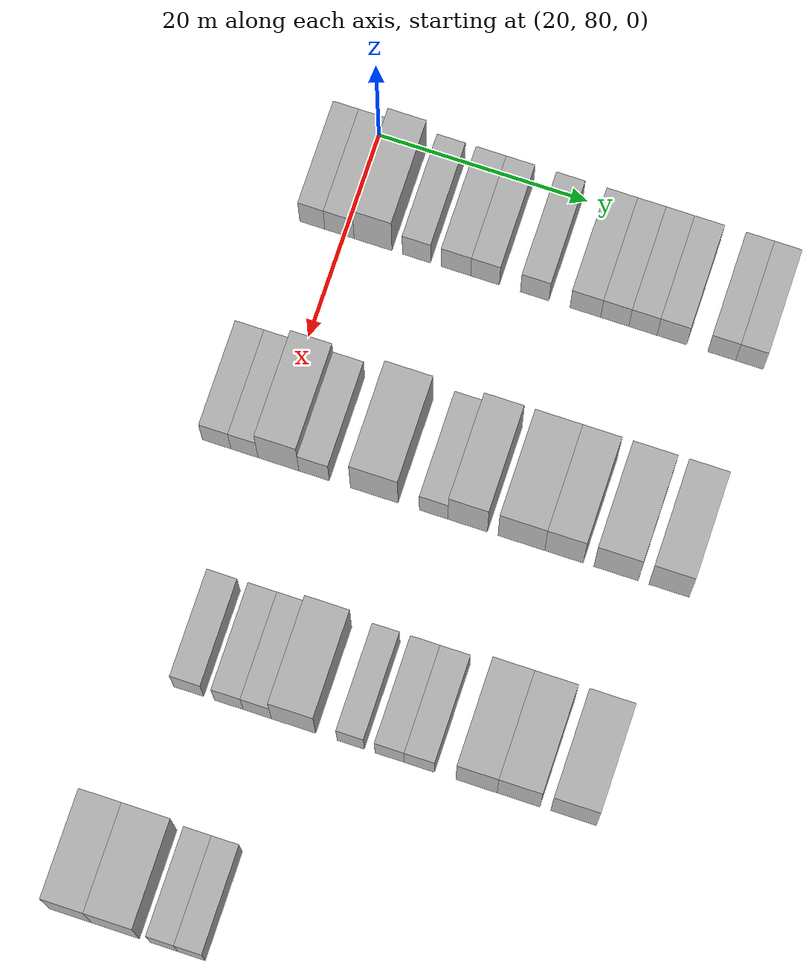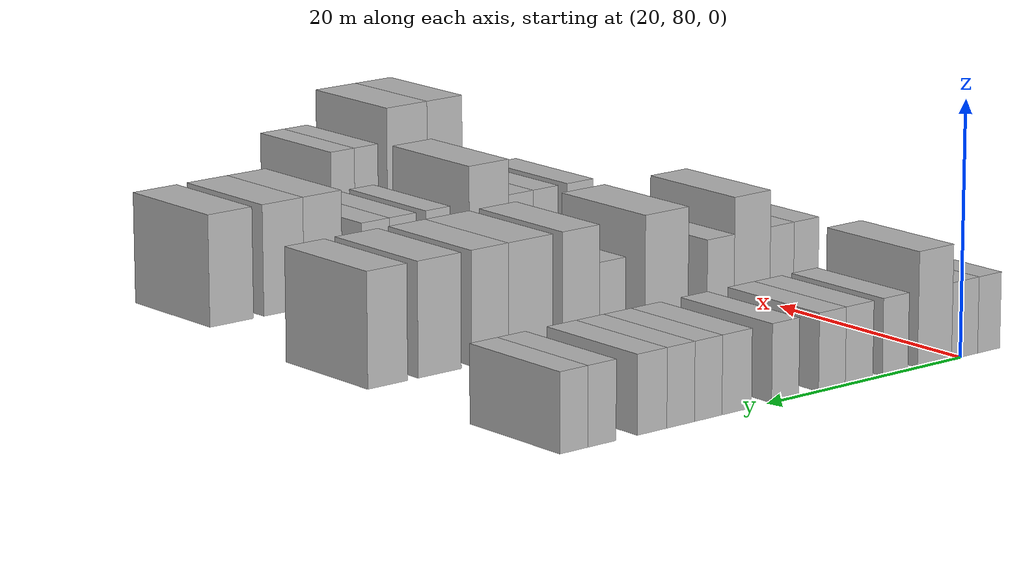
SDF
<sdf version="1.6">
 <world name="default">
  <model name="building_107">
   <static>1</static>
   <pose>25.0000 76.9660 0 0.000000 0.000000 0.000000</pose>
   <link name="link">
    <pose>0 0 3.00 0 0 0</pose>
    <collision name="collision"><geometry><box><size>10.0000 2.4051 6.0000</size></box></geometry></collision>
    <visual name="visual">
     <cast_shadows>0</cast_shadows>
     <geometry><box><size>10.0000 2.4051 6.0000</size></box></geometry>
     <material>
      <script>
       <uri>model://HANNAS_wall/materials/scripts</uri>
       <uri>model://HANNAS_wall/materials/textures</uri>
       <name>vrc/HANNAS_wall</name>
      </script>
     </material>
    </visual>
   </link>
  </model>
  <model name="building_108">
   <static>1</static>
   <pose>25.0000 79.5678 0 0.000000 0.000000 0.000000</pose>
   <link name="link">
    <pose>0 0 3.00 0 0 0</pose>
    <collision name="collision"><geometry><box><size>10.0000 2.7986 6.0000</size></box></geometry></collision>
    <visual name="visual">
     <cast_shadows>0</cast_shadows>
     <geometry><box><size>10.0000 2.7986 6.0000</size></box></geometry>
     <material>
      <script>
       <uri>model://HANNAS_wall/materials/scripts</uri>
       <uri>model://HANNAS_wall/materials/textures</uri>
       <name>vrc/HANNAS_wall</name>
      </script>
     </material>
    </visual>
   </link>
  </model>
  <model name="building_109">
   <static>1</static>
   <pose>25.0000 82.7773 0 0.000000 0.000000 0.000000</pose>
   <link name="link">
    <pose>0 0 4.50 0 0 0</pose>
    <collision name="collision"><geometry><box><size>10.0000 3.6204 9.0000</size></box></geometry></collision>
    <visual name="visual">
     <cast_shadows>0</cast_shadows>
     <geometry><box><size>10.0000 3.6204 9.0000</size></box></geometry>
     <material>
      <script>
       <uri>model://HANNAS_wall/materials/scripts</uri>
       <uri>model://HANNAS_wall/materials/textures</uri>
       <name>vrc/HANNAS_wall</name>
      </script>
     </material>
    </visual>
   </link>
  </model>
  <model name="building_110">
   <static>1</static>
   <pose>25.0000 86.9263 0 0.000000 0.000000 0.000000</pose>
   <link name="link">
    <pose>0 0 3.00 0 0 0</pose>
    <collision name="collision"><geometry><box><size>10.0000 2.6775 6.0000</size></box></geometry></collision>
    <visual name="visual">
     <cast_shadows>0</cast_shadows>
     <geometry><box><size>10.0000 2.6775 6.0000</size></box></geometry>
     <material>
      <script>
       <uri>model://HANNAS_wall/materials/scripts</uri>
       <uri>model://HANNAS_wall/materials/textures</uri>
       <name>vrc/HANNAS_wall</name>
      </script>
     </material>
    </visual>
   </link>
  </model>
  <model name="building_111">
   <static>1</static>
   <pose>25.0000 90.6845 0 0.000000 0.000000 0.000000</pose>
   <link name="link">
    <pose>0 0 3.00 0 0 0</pose>
    <collision name="collision"><geometry><box><size>10.0000 2.8389 6.0000</size></box></geometry></collision>
    <visual name="visual">
     <cast_shadows>0</cast_shadows>
     <geometry><box><size>10.0000 2.8389 6.0000</size></box></geometry>
     <material>
      <script>
       <uri>model://HANNAS_wall/materials/scripts</uri>
       <uri>model://HANNAS_wall/materials/textures</uri>
       <name>vrc/HANNAS_wall</name>
      </script>
     </material>
    </visual>
   </link>
  </model>
  <model name="building_112">
   <static>1</static>
   <pose>25.0000 93.4690 0 0.000000 0.000000 0.000000</pose>
   <link name="link">
    <pose>0 0 3.00 0 0 0</pose>
    <collision name="collision"><geometry><box><size>10.0000 2.7301 6.0000</size></box></geometry></collision>
    <visual name="visual">
     <cast_shadows>0</cast_shadows>
     <geometry><box><size>10.0000 2.7301 6.0000</size></box></geometry>
     <material>
      <script>
       <uri>model://HANNAS_wall/materials/scripts</uri>
       <uri>model://HANNAS_wall/materials/textures</uri>
       <name>vrc/HANNAS_wall</name>
      </script>
     </material>
    </visual>
   </link>
  </model>
  <model name="building_113">
   <static>1</static>
   <pose>25.0000 98.1934 0 0.000000 0.000000 0.000000</pose>
   <link name="link">
    <pose>0 0 3.00 0 0 0</pose>
    <collision name="collision"><geometry><box><size>10.0000 2.7188 6.0000</size></box></geometry></collision>
    <visual name="visual">
     <cast_shadows>0</cast_shadows>
     <geometry><box><size>10.0000 2.7188 6.0000</size></box></geometry>
     <material>
      <script>
       <uri>model://HANNAS_wall/materials/scripts</uri>
       <uri>model://HANNAS_wall/materials/textures</uri>
       <name>vrc/HANNAS_wall</name>
      </script>
     </material>
    </visual>
   </link>
  </model>
  <model name="building_114">
   <static>1</static>
   <pose>25.0000 103.0062 0 0.000000 0.000000 0.000000</pose>
   <link name="link">
    <pose>0 0 3.00 0 0 0</pose>
    <collision name="collision"><geometry><box><size>10.0000 2.9068 6.0000</size></box></geometry></collision>
    <visual name="visual">
     <cast_shadows>0</cast_shadows>
     <geometry><box><size>10.0000 2.9068 6.0000</size></box></geometry>
     <material>
      <script>
       <uri>model://HANNAS_wall/materials/scripts</uri>
       <uri>model://HANNAS_wall/materials/textures</uri>
       <name>vrc/HANNAS_wall</name>
      </script>
     </material>
    </visual>
   </link>
  </model>
  <model name="building_115">
   <static>1</static>
   <pose>25.0000 105.7967 0 0.000000 0.000000 0.000000</pose>
   <link name="link">
    <pose>0 0 3.00 0 0 0</pose>
    <collision name="collision"><geometry><box><size>10.0000 2.6740 6.0000</size></box></geometry></collision>
    <visual name="visual">
     <cast_shadows>0</cast_shadows>
     <geometry><box><size>10.0000 2.6740 6.0000</size></box></geometry>
     <material>
      <script>
       <uri>model://HANNAS_wall/materials/scripts</uri>
       <uri>model://HANNAS_wall/materials/textures</uri>
       <name>vrc/HANNAS_wall</name>
      </script>
     </material>
    </visual>
   </link>
  </model>
  <model name="building_116">
   <static>1</static>
   <pose>25.0000 108.4665 0 0.000000 0.000000 0.000000</pose>
   <link name="link">
    <pose>0 0 3.00 0 0 0</pose>
    <collision name="collision"><geometry><box><size>10.0000 2.6656 6.0000</size></box></geometry></collision>
    <visual name="visual">
     <cast_shadows>0</cast_shadows>
     <geometry><box><size>10.0000 2.6656 6.0000</size></box></geometry>
     <material>
      <script>
       <uri>model://HANNAS_wall/materials/scripts</uri>
       <uri>model://HANNAS_wall/materials/textures</uri>
       <name>vrc/HANNAS_wall</name>
      </script>
     </material>
    </visual>
   </link>
  </model>
  <model name="building_117">
   <static>1</static>
   <pose>25.0000 111.2076 0 0.000000 0.000000 0.000000</pose>
   <link name="link">
    <pose>0 0 3.00 0 0 0</pose>
    <collision name="collision"><geometry><box><size>10.0000 2.8167 6.0000</size></box></geometry></collision>
    <visual name="visual">
     <cast_shadows>0</cast_shadows>
     <geometry><box><size>10.0000 2.8167 6.0000</size></box></geometry>
     <material>
      <script>
       <uri>model://HANNAS_wall/materials/scripts</uri>
       <uri>model://HANNAS_wall/materials/textures</uri>
       <name>vrc/HANNAS_wall</name>
      </script>
     </material>
    </visual>
   </link>
  </model>
  <model name="building_118">
   <static>1</static>
   <pose>25.0000 115.9369 0 0.000000 0.000000 0.000000</pose>
   <link name="link">
    <pose>0 0 3.00 0 0 0</pose>
    <collision name="collision"><geometry><box><size>10.0000 2.6417 6.0000</size></box></geometry></collision>
    <visual name="visual">
     <cast_shadows>0</cast_shadows>
     <geometry><box><size>10.0000 2.6417 6.0000</size></box></geometry>
     <material>
      <script>
       <uri>model://HANNAS_wall/materials/scripts</uri>
       <uri>model://HANNAS_wall/materials/textures</uri>
       <name>vrc/HANNAS_wall</name>
      </script>
     </material>
    </visual>
   </link>
  </model>
  <model name="building_119">
   <static>1</static>
   <pose>25.0000 118.5498 0 0.000000 0.000000 0.000000</pose>
   <link name="link">
    <pose>0 0 3.00 0 0 0</pose>
    <collision name="collision"><geometry><box><size>10.0000 2.5841 6.0000</size></box></geometry></collision>
    <visual name="visual">
     <cast_shadows>0</cast_shadows>
     <geometry><box><size>10.0000 2.5841 6.0000</size></box></geometry>
     <material>
      <script>
       <uri>model://HANNAS_wall/materials/scripts</uri>
       <uri>model://HANNAS_wall/materials/textures</uri>
       <name>vrc/HANNAS_wall</name>
      </script>
     </material>
    </visual>
   </link>
  </model>
  <model name="building_291">
   <static>1</static>
   <pose>47.0000 75.3293 0 0.000000 0.000000 0.000000</pose>
   <link name="link">
    <pose>0 0 3.00 0 0 0</pose>
    <collision name="collision"><geometry><box><size>10.0000 2.7105 6.0000</size></box></geometry></collision>
    <visual name="visual">
     <cast_shadows>0</cast_shadows>
     <geometry><box><size>10.0000 2.7105 6.0000</size></box></geometry>
     <material>
      <script>
       <uri>model://HANNAS_wall/materials/scripts</uri>
       <uri>model://HANNAS_wall/materials/textures</uri>
       <name>vrc/HANNAS_wall</name>
      </script>
     </material>
    </visual>
   </link>
  </model>
  <model name="building_292">
   <static>1</static>
   <pose>47.0000 77.9734 0 0.000000 0.000000 0.000000</pose>
   <link name="link">
    <pose>0 0 3.00 0 0 0</pose>
    <collision name="collision"><geometry><box><size>10.0000 2.5777 6.0000</size></box></geometry></collision>
    <visual name="visual">
     <cast_shadows>0</cast_shadows>
     <geometry><box><size>10.0000 2.5777 6.0000</size></box></geometry>
     <material>
      <script>
       <uri>model://HANNAS_wall/materials/scripts</uri>
       <uri>model://HANNAS_wall/materials/textures</uri>
       <name>vrc/HANNAS_wall</name>
      </script>
     </material>
    </visual>
   </link>
  </model>
  <model name="building_293">
   <static>1</static>
   <pose>47.0000 81.1920 0 0.000000 0.000000 0.000000</pose>
   <link name="link">
    <pose>0 0 4.50 0 0 0</pose>
    <collision name="collision"><geometry><box><size>10.0000 3.8594 9.0000</size></box></geometry></collision>
    <visual name="visual">
     <cast_shadows>0</cast_shadows>
     <geometry><box><size>10.0000 3.8594 9.0000</size></box></geometry>
     <material>
      <script>
       <uri>model://HANNAS_wall/materials/scripts</uri>
       <uri>model://HANNAS_wall/materials/textures</uri>
       <name>vrc/HANNAS_wall</name>
      </script>
     </material>
    </visual>
   </link>
  </model>
  <model name="building_294">
   <static>1</static>
   <pose>47.0000 84.5589 0 0.000000 0.000000 0.000000</pose>
   <link name="link">
    <pose>0 0 3.00 0 0 0</pose>
    <collision name="collision"><geometry><box><size>10.0000 2.8746 6.0000</size></box></geometry></collision>
    <visual name="visual">
     <cast_shadows>0</cast_shadows>
     <geometry><box><size>10.0000 2.8746 6.0000</size></box></geometry>
     <material>
      <script>
       <uri>model://HANNAS_wall/materials/scripts</uri>
       <uri>model://HANNAS_wall/materials/textures</uri>
       <name>vrc/HANNAS_wall</name>
      </script>
     </material>
    </visual>
   </link>
  </model>
  <model name="building_295">
   <static>1</static>
   <pose>47.0000 90.2418 0 0.000000 0.000000 0.000000</pose>
   <link name="link">
    <pose>0 0 4.50 0 0 0</pose>
    <collision name="collision"><geometry><box><size>10.0000 4.4912 9.0000</size></box></geometry></collision>
    <visual name="visual">
     <cast_shadows>0</cast_shadows>
     <geometry><box><size>10.0000 4.4912 9.0000</size></box></geometry>
     <material>
      <script>
       <uri>model://HANNAS_wall/materials/scripts</uri>
       <uri>model://HANNAS_wall/materials/textures</uri>
       <name>vrc/HANNAS_wall</name>
      </script>
     </material>
    </visual>
   </link>
  </model>
  <model name="building_296">
   <static>1</static>
   <pose>47.0000 95.8360 0 0.000000 0.000000 0.000000</pose>
   <link name="link">
    <pose>0 0 3.00 0 0 0</pose>
    <collision name="collision"><geometry><box><size>10.0000 2.6972 6.0000</size></box></geometry></collision>
    <visual name="visual">
     <cast_shadows>0</cast_shadows>
     <geometry><box><size>10.0000 2.6972 6.0000</size></box></geometry>
     <material>
      <script>
       <uri>model://HANNAS_wall/materials/scripts</uri>
       <uri>model://HANNAS_wall/materials/textures</uri>
       <name>vrc/HANNAS_wall</name>
      </script>
     </material>
    </visual>
   </link>
  </model>
  <model name="building_297">
   <static>1</static>
   <pose>47.0000 99.0369 0 0.000000 0.000000 0.000000</pose>
   <link name="link">
    <pose>0 0 4.50 0 0 0</pose>
    <collision name="collision"><geometry><box><size>10.0000 3.7046 9.0000</size></box></geometry></collision>
    <visual name="visual">
     <cast_shadows>0</cast_shadows>
     <geometry><box><size>10.0000 3.7046 9.0000</size></box></geometry>
     <material>
      <script>
       <uri>model://HANNAS_wall/materials/scripts</uri>
       <uri>model://HANNAS_wall/materials/textures</uri>
       <name>vrc/HANNAS_wall</name>
      </script>
     </material>
    </visual>
   </link>
  </model>
  <model name="building_298">
   <static>1</static>
   <pose>47.0000 104.0812 0 0.000000 0.000000 0.000000</pose>
   <link name="link">
    <pose>0 0 4.50 0 0 0</pose>
    <collision name="collision"><geometry><box><size>10.0000 4.3840 9.0000</size></box></geometry></collision>
    <visual name="visual">
     <cast_shadows>0</cast_shadows>
     <geometry><box><size>10.0000 4.3840 9.0000</size></box></geometry>
     <material>
      <script>
       <uri>model://HANNAS_wall/materials/scripts</uri>
       <uri>model://HANNAS_wall/materials/textures</uri>
       <name>vrc/HANNAS_wall</name>
      </script>
     </material>
    </visual>
   </link>
  </model>
  <model name="building_299">
   <static>1</static>
   <pose>47.0000 108.0763 0 0.000000 0.000000 0.000000</pose>
   <link name="link">
    <pose>0 0 4.50 0 0 0</pose>
    <collision name="collision"><geometry><box><size>10.0000 3.6062 9.0000</size></box></geometry></collision>
    <visual name="visual">
     <cast_shadows>0</cast_shadows>
     <geometry><box><size>10.0000 3.6062 9.0000</size></box></geometry>
     <material>
      <script>
       <uri>model://HANNAS_wall/materials/scripts</uri>
       <uri>model://HANNAS_wall/materials/textures</uri>
       <name>vrc/HANNAS_wall</name>
      </script>
     </material>
    </visual>
   </link>
  </model>
  <model name="building_300">
   <static>1</static>
   <pose>47.0000 112.9528 0 0.000000 0.000000 0.000000</pose>
   <link name="link">
    <pose>0 0 4.50 0 0 0</pose>
    <collision name="collision"><geometry><box><size>10.0000 4.1467 9.0000</size></box></geometry></collision>
    <visual name="visual">
     <cast_shadows>0</cast_shadows>
     <geometry><box><size>10.0000 4.1467 9.0000</size></box></geometry>
     <material>
      <script>
       <uri>model://HANNAS_wall/materials/scripts</uri>
       <uri>model://HANNAS_wall/materials/textures</uri>
       <name>vrc/HANNAS_wall</name>
      </script>
     </material>
    </visual>
   </link>
  </model>
  <model name="building_301">
   <static>1</static>
   <pose>47.0000 117.9065 0 0.000000 0.000000 0.000000</pose>
   <link name="link">
    <pose>0 0 4.50 0 0 0</pose>
    <collision name="collision"><geometry><box><size>10.0000 3.7607 9.0000</size></box></geometry></collision>
    <visual name="visual">
     <cast_shadows>0</cast_shadows>
     <geometry><box><size>10.0000 3.7607 9.0000</size></box></geometry>
     <material>
      <script>
       <uri>model://HANNAS_wall/materials/scripts</uri>
       <uri>model://HANNAS_wall/materials/textures</uri>
       <name>vrc/HANNAS_wall</name>
      </script>
     </material>
    </visual>
   </link>
  </model>
  <model name="building_477">
   <static>1</static>
   <pose>69.0000 80.2710 0 0.000000 0.000000 0.000000</pose>
   <link name="link">
    <pose>0 0 3.00 0 0 0</pose>
    <collision name="collision"><geometry><box><size>10.0000 2.8062 6.0000</size></box></geometry></collision>
    <visual name="visual">
     <cast_shadows>0</cast_shadows>
     <geometry><box><size>10.0000 2.8062 6.0000</size></box></geometry>
     <material>
      <script>
       <uri>model://HANNAS_wall/materials/scripts</uri>
       <uri>model://HANNAS_wall/materials/textures</uri>
       <name>vrc/HANNAS_wall</name>
      </script>
     </material>
    </visual>
   </link>
  </model>
  <model name="building_478">
   <static>1</static>
   <pose>69.0000 84.0158 0 0.000000 0.000000 0.000000</pose>
   <link name="link">
    <pose>0 0 3.00 0 0 0</pose>
    <collision name="collision"><geometry><box><size>10.0000 2.6835 6.0000</size></box></geometry></collision>
    <visual name="visual">
     <cast_shadows>0</cast_shadows>
     <geometry><box><size>10.0000 2.6835 6.0000</size></box></geometry>
     <material>
      <script>
       <uri>model://HANNAS_wall/materials/scripts</uri>
       <uri>model://HANNAS_wall/materials/textures</uri>
       <name>vrc/HANNAS_wall</name>
      </script>
     </material>
    </visual>
   </link>
  </model>
  <model name="building_479">
   <static>1</static>
   <pose>69.0000 86.6838 0 0.000000 0.000000 0.000000</pose>
   <link name="link">
    <pose>0 0 3.00 0 0 0</pose>
    <collision name="collision"><geometry><box><size>10.0000 2.6525 6.0000</size></box></geometry></collision>
    <visual name="visual">
     <cast_shadows>0</cast_shadows>
     <geometry><box><size>10.0000 2.6525 6.0000</size></box></geometry>
     <material>
      <script>
       <uri>model://HANNAS_wall/materials/scripts</uri>
       <uri>model://HANNAS_wall/materials/textures</uri>
       <name>vrc/HANNAS_wall</name>
      </script>
     </material>
    </visual>
   </link>
  </model>
  <model name="building_480">
   <static>1</static>
   <pose>69.0000 90.0731 0 0.000000 0.000000 0.000000</pose>
   <link name="link">
    <pose>0 0 4.50 0 0 0</pose>
    <collision name="collision"><geometry><box><size>10.0000 4.1261 9.0000</size></box></geometry></collision>
    <visual name="visual">
     <cast_shadows>0</cast_shadows>
     <geometry><box><size>10.0000 4.1261 9.0000</size></box></geometry>
     <material>
      <script>
       <uri>model://HANNAS_wall/materials/scripts</uri>
       <uri>model://HANNAS_wall/materials/textures</uri>
       <name>vrc/HANNAS_wall</name>
      </script>
     </material>
    </visual>
   </link>
  </model>
  <model name="building_481">
   <static>1</static>
   <pose>69.0000 95.3985 0 0.000000 0.000000 0.000000</pose>
   <link name="link">
    <pose>0 0 3.00 0 0 0</pose>
    <collision name="collision"><geometry><box><size>10.0000 2.5246 6.0000</size></box></geometry></collision>
    <visual name="visual">
     <cast_shadows>0</cast_shadows>
     <geometry><box><size>10.0000 2.5246 6.0000</size></box></geometry>
     <material>
      <script>
       <uri>model://HANNAS_wall/materials/scripts</uri>
       <uri>model://HANNAS_wall/materials/textures</uri>
       <name>vrc/HANNAS_wall</name>
      </script>
     </material>
    </visual>
   </link>
  </model>
  <model name="building_482">
   <static>1</static>
   <pose>69.0000 99.0196 0 0.000000 0.000000 0.000000</pose>
   <link name="link">
    <pose>0 0 3.00 0 0 0</pose>
    <collision name="collision"><geometry><box><size>10.0000 2.7177 6.0000</size></box></geometry></collision>
    <visual name="visual">
     <cast_shadows>0</cast_shadows>
     <geometry><box><size>10.0000 2.7177 6.0000</size></box></geometry>
     <material>
      <script>
       <uri>model://HANNAS_wall/materials/scripts</uri>
       <uri>model://HANNAS_wall/materials/textures</uri>
       <name>vrc/HANNAS_wall</name>
      </script>
     </material>
    </visual>
   </link>
  </model>
  <model name="building_483">
   <static>1</static>
   <pose>69.0000 101.7805 0 0.000000 0.000000 0.000000</pose>
   <link name="link">
    <pose>0 0 3.00 0 0 0</pose>
    <collision name="collision"><geometry><box><size>10.0000 2.8041 6.0000</size></box></geometry></collision>
    <visual name="visual">
     <cast_shadows>0</cast_shadows>
     <geometry><box><size>10.0000 2.8041 6.0000</size></box></geometry>
     <material>
      <script>
       <uri>model://HANNAS_wall/materials/scripts</uri>
       <uri>model://HANNAS_wall/materials/textures</uri>
       <name>vrc/HANNAS_wall</name>
      </script>
     </material>
    </visual>
   </link>
  </model>
  <model name="building_484">
   <static>1</static>
   <pose>69.0000 107.0834 0 0.000000 0.000000 0.000000</pose>
   <link name="link">
    <pose>0 0 4.50 0 0 0</pose>
    <collision name="collision"><geometry><box><size>10.0000 3.8019 9.0000</size></box></geometry></collision>
    <visual name="visual">
     <cast_shadows>0</cast_shadows>
     <geometry><box><size>10.0000 3.8019 9.0000</size></box></geometry>
     <material>
      <script>
       <uri>model://HANNAS_wall/materials/scripts</uri>
       <uri>model://HANNAS_wall/materials/textures</uri>
       <name>vrc/HANNAS_wall</name>
      </script>
     </material>
    </visual>
   </link>
  </model>
  <model name="building_485">
   <static>1</static>
   <pose>69.0000 110.9697 0 0.000000 0.000000 0.000000</pose>
   <link name="link">
    <pose>0 0 4.50 0 0 0</pose>
    <collision name="collision"><geometry><box><size>10.0000 3.9706 9.0000</size></box></geometry></collision>
    <visual name="visual">
     <cast_shadows>0</cast_shadows>
     <geometry><box><size>10.0000 3.9706 9.0000</size></box></geometry>
     <material>
      <script>
       <uri>model://HANNAS_wall/materials/scripts</uri>
       <uri>model://HANNAS_wall/materials/textures</uri>
       <name>vrc/HANNAS_wall</name>
      </script>
     </material>
    </visual>
   </link>
  </model>
  <model name="building_486">
   <static>1</static>
   <pose>69.0000 116.0670 0 0.000000 0.000000 0.000000</pose>
   <link name="link">
    <pose>0 0 4.50 0 0 0</pose>
    <collision name="collision"><geometry><box><size>10.0000 4.2240 9.0000</size></box></geometry></collision>
    <visual name="visual">
     <cast_shadows>0</cast_shadows>
     <geometry><box><size>10.0000 4.2240 9.0000</size></box></geometry>
     <material>
      <script>
       <uri>model://HANNAS_wall/materials/scripts</uri>
       <uri>model://HANNAS_wall/materials/textures</uri>
       <name>vrc/HANNAS_wall</name>
      </script>
     </material>
    </visual>
   </link>
  </model>
  <model name="building_663">
   <static>1</static>
   <pose>91.0000 76.9365 0 0.000000 0.000000 0.000000</pose>
   <link name="link">
    <pose>0 0 4.50 0 0 0</pose>
    <collision name="collision"><geometry><box><size>10.0000 3.9004 9.0000</size></box></geometry></collision>
    <visual name="visual">
     <cast_shadows>0</cast_shadows>
     <geometry><box><size>10.0000 3.9004 9.0000</size></box></geometry>
     <material>
      <script>
       <uri>model://HANNAS_wall/materials/scripts</uri>
       <uri>model://HANNAS_wall/materials/textures</uri>
       <name>vrc/HANNAS_wall</name>
      </script>
     </material>
    </visual>
   </link>
  </model>
  <model name="building_664">
   <static>1</static>
   <pose>91.0000 81.0967 0 0.000000 0.000000 0.000000</pose>
   <link name="link">
    <pose>0 0 4.50 0 0 0</pose>
    <collision name="collision"><geometry><box><size>10.0000 4.4199 9.0000</size></box></geometry></collision>
    <visual name="visual">
     <cast_shadows>0</cast_shadows>
     <geometry><box><size>10.0000 4.4199 9.0000</size></box></geometry>
     <material>
      <script>
       <uri>model://HANNAS_wall/materials/scripts</uri>
       <uri>model://HANNAS_wall/materials/textures</uri>
       <name>vrc/HANNAS_wall</name>
      </script>
     </material>
    </visual>
   </link>
  </model>
  <model name="building_665">
   <static>1</static>
   <pose>91.0000 85.5809 0 0.000000 0.000000 0.000000</pose>
   <link name="link">
    <pose>0 0 3.00 0 0 0</pose>
    <collision name="collision"><geometry><box><size>10.0000 2.5485 6.0000</size></box></geometry></collision>
    <visual name="visual">
     <cast_shadows>0</cast_shadows>
     <geometry><box><size>10.0000 2.5485 6.0000</size></box></geometry>
     <material>
      <script>
       <uri>model://HANNAS_wall/materials/scripts</uri>
       <uri>model://HANNAS_wall/materials/textures</uri>
       <name>vrc/HANNAS_wall</name>
      </script>
     </material>
    </visual>
   </link>
  </model>
  <model name="building_666">
   <static>1</static>
   <pose>91.0000 88.1199 0 0.000000 0.000000 0.000000</pose>
   <link name="link">
    <pose>0 0 3.00 0 0 0</pose>
    <collision name="collision"><geometry><box><size>10.0000 2.5297 6.0000</size></box></geometry></collision>
    <visual name="visual">
     <cast_shadows>0</cast_shadows>
     <geometry><box><size>10.0000 2.5297 6.0000</size></box></geometry>
     <material>
      <script>
       <uri>model://HANNAS_wall/materials/scripts</uri>
       <uri>model://HANNAS_wall/materials/textures</uri>
       <name>vrc/HANNAS_wall</name>
      </script>
     </material>
    </visual>
   </link>
  </model>
 </world>
</sdf>
